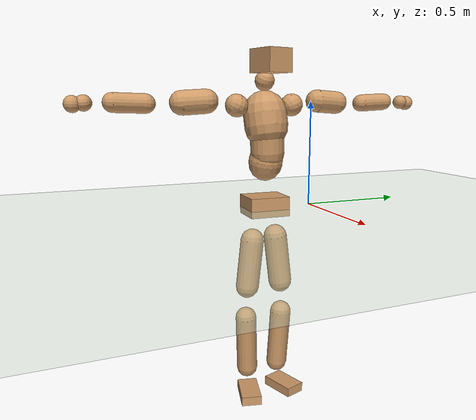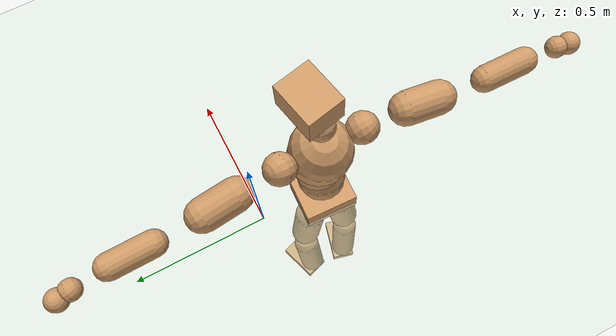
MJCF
<mujoco model="humanoid">
  <compiler coordinate="local" angle="radian"/>
  <default>
    <joint damping="0.0" armature="0.01" stiffness="0.0" limited="true"/>
    <geom conaffinity="1" condim="3" contype="7" margin="0.001" rgba="0.8 0.6 .4 1"/>
  </default>
  <asset>
    <texture type="skybox" builtin="gradient" rgb1=".4 .5 .6" rgb2="0 0 0" width="100" height="100"/>
    <texture builtin="flat" height="1278" mark="cross" markrgb="1 1 1" name="texgeom" random="0.01" rgb1="0.8 0.6 0.4" rgb2="0.8 0.6 0.4" type="cube" width="127"/>
    <texture builtin="checker" height="100" name="texplane" rgb1="0 0 0" rgb2="0.8 0.8 0.8" type="2d" width="100"/>
    <material name="MatPlane" reflectance="0.5" shininess="1" specular="1" texrepeat="60 60" texture="texplane"/>
    <material name="geom" texture="texgeom" texuniform="true"/>
  </asset>
  <worldbody>
    <light cutoff="100" diffuse="1 1 1" dir="-0 0 -1.3" directional="true" exponent="1" pos="0 0 1.3" specular=".1 .1 .1"/>
    <geom conaffinity="1" condim="3" name="floor" pos="0 0 0" rgba="0.8 0.9 0.8 1" size="100 100 .2" type="plane" material="MatPlane"/>
    <body name="Pelvis" pos="-0.0042 -0.2357 0.0204">
      <freejoint name="Pelvis"/>
      <geom type="box" contype="1" conaffinity="1" density="5359.374951" pos="-0.0105 0.0004 -0.0082" size="0.0826 0.0965 0.0466" quat="0.9998 0.0000 0.0000 -0.0207" name="Pelvis"/>
      <body name="L_Hip" pos="-0.0187 0.0516 -0.084">
        <joint name="L_Hip_x" type="hinge" pos="0 0 0" axis="1 0 0" stiffness="1600" damping="160" armature="0.02" range="-180.0000 180.0000"/>
        <joint name="L_Hip_y" type="hinge" pos="0 0 0" axis="0 1 0" stiffness="1600" damping="160" armature="0.02" range="-180.0000 180.0000"/>
        <joint name="L_Hip_z" type="hinge" pos="0 0 0" axis="0 0 1" stiffness="1600" damping="160" armature="0.02" range="-180.0000 180.0000"/>
        <geom type="capsule" contype="1" conaffinity="1" density="2040.816327" size="0.0571" fromto="0.0021 0.0094 -0.0866 0.0079 0.0352 -0.3239" name="L_Hip"/>
        <body name="L_Knee" pos="0.0101 0.0446 -0.4105">
          <joint name="L_Knee_x" type="hinge" pos="0 0 0" axis="1 0 0" stiffness="1600" damping="160" armature="0.02" range="-180.0000 180.0000"/>
          <joint name="L_Knee_y" type="hinge" pos="0 0 0" axis="0 1 0" stiffness="1600" damping="160" armature="0.02" range="-180.0000 180.0000"/>
          <joint name="L_Knee_z" type="hinge" pos="0 0 0" axis="0 0 1" stiffness="1600" damping="160" armature="0.02" range="-180.0000 180.0000"/>
          <geom type="capsule" contype="1" conaffinity="1" density="1234.567901" size="0.0521" fromto="-0.0067 -0.0027 -0.0818 -0.0307 -0.0125 -0.3751" name="L_Knee"/>
          <body name="L_Ankle" pos="-0.0374 -0.0152 -0.4569">
            <joint name="L_Ankle_x" type="hinge" pos="0 0 0" axis="1 0 0" stiffness="1600" damping="160" armature="0.02" range="-180.0000 180.0000"/>
            <joint name="L_Ankle_y" type="hinge" pos="0 0 0" axis="0 1 0" stiffness="1600" damping="160" armature="0.02" range="-180.0000 180.0000"/>
            <joint name="L_Ankle_z" type="hinge" pos="0 0 0" axis="0 0 1" stiffness="1600" damping="160" armature="0.02" range="-180.0000 180.0000"/>
            <geom type="box" contype="1" conaffinity="1" density="1000.000009" pos="0.0625 0.0200 -0.0312" size="0.0886 0.0506 0.0231" quat="0.9880 0.0000 0.0000 0.1546" name="L_Ankle"/>
            <body name="L_Toe" pos="0.1249 0.0401 -0.0625">
              <joint name="L_Toe_x" type="hinge" pos="0 0 0" axis="1 0 0" stiffness="1000" damping="100" armature="0.02" range="-180.0000 180.0000"/>
              <joint name="L_Toe_y" type="hinge" pos="0 0 0" axis="0 1 0" stiffness="1000" damping="100" armature="0.02" range="-180.0000 180.0000"/>
              <joint name="L_Toe_z" type="hinge" pos="0 0 0" axis="0 0 1" stiffness="1000" damping="100" armature="0.02" range="-180.0000 180.0000"/>
              <geom type="box" contype="1" conaffinity="1" density="8105315.616793" pos="0.0000 0.0000 0.0308" size="0.0011 0.0025 0.0011" quat="0.9872 0.0000 0.0000 0.1593" name="L_Toe"/>
            </body>
          </body>
        </body>
      </body>
      <body name="R_Hip" pos="-0.0136 -0.0541 -0.0943">
        <joint name="R_Hip_x" type="hinge" pos="0 0 0" axis="1 0 0" stiffness="1600" damping="160" armature="0.02" range="-180.0000 180.0000"/>
        <joint name="R_Hip_y" type="hinge" pos="0 0 0" axis="0 1 0" stiffness="1600" damping="160" armature="0.02" range="-180.0000 180.0000"/>
        <joint name="R_Hip_z" type="hinge" pos="0 0 0" axis="0 0 1" stiffness="1600" damping="160" armature="0.02" range="-180.0000 180.0000"/>
        <geom type="capsule" contype="1" conaffinity="1" density="2040.816327" size="0.0564" fromto="-0.0008 -0.0097 -0.0858 -0.0031 -0.0364 -0.3232" name="R_Hip"/>
        <body name="R_Knee" pos="-0.0039 -0.0461 -0.4091">
          <joint name="R_Knee_x" type="hinge" pos="0 0 0" axis="1 0 0" stiffness="1600" damping="160" armature="0.02" range="-180.0000 180.0000"/>
          <joint name="R_Knee_y" type="hinge" pos="0 0 0" axis="0 1 0" stiffness="1600" damping="160" armature="0.02" range="-180.0000 180.0000"/>
          <joint name="R_Knee_z" type="hinge" pos="0 0 0" axis="0 0 1" stiffness="1600" damping="160" armature="0.02" range="-180.0000 180.0000"/>
          <geom type="capsule" contype="1" conaffinity="1" density="1234.567901" size="0.0521" fromto="-0.0060 0.0038 -0.0818 -0.0272 0.0174 -0.3695" name="R_Knee"/>
          <body name="R_Ankle" pos="-0.0332 0.0212 -0.4513">
            <joint name="R_Ankle_x" type="hinge" pos="0 0 0" axis="1 0 0" stiffness="1600" damping="160" armature="0.02" range="-180.0000 180.0000"/>
            <joint name="R_Ankle_y" type="hinge" pos="0 0 0" axis="0 1 0" stiffness="1600" damping="160" armature="0.02" range="-180.0000 180.0000"/>
            <joint name="R_Ankle_z" type="hinge" pos="0 0 0" axis="0 0 1" stiffness="1600" damping="160" armature="0.02" range="-180.0000 180.0000"/>
            <geom type="box" contype="1" conaffinity="1" density="1000.00001" pos="0.0668 -0.0169 -0.0331" size="0.0926 0.0495 0.0229" quat="0.9924 0.0000 0.0000 -0.1234" name="R_Ankle"/>
            <body name="R_Toe" pos="0.1337 -0.0338 -0.0662">
              <joint name="R_Toe_x" type="hinge" pos="0 0 0" axis="1 0 0" stiffness="1000" damping="100" armature="0.02" range="-180.0000 180.0000"/>
              <joint name="R_Toe_y" type="hinge" pos="0 0 0" axis="0 1 0" stiffness="1000" damping="100" armature="0.02" range="-180.0000 180.0000"/>
              <joint name="R_Toe_z" type="hinge" pos="0 0 0" axis="0 0 1" stiffness="1000" damping="100" armature="0.02" range="-180.0000 180.0000"/>
              <geom type="box" contype="1" conaffinity="1" density="8415764.719971" pos="0.0000 0.0000 0.0332" size="0.0011 0.0024 0.0012" quat="0.9934 0.0000 0.0000 -0.1148" name="R_Toe"/>
            </body>
          </body>
        </body>
      </body>
      <body name="Torso" pos="-0.0305 0.005 0.1292">
        <joint name="Torso_x" type="hinge" pos="0 0 0" axis="1 0 0" stiffness="2000" damping="200" armature="0.02" range="-180.0000 180.0000"/>
        <joint name="Torso_y" type="hinge" pos="0 0 0" axis="0 1 0" stiffness="2000" damping="200" armature="0.02" range="-180.0000 180.0000"/>
        <joint name="Torso_z" type="hinge" pos="0 0 0" axis="0 0 1" stiffness="2000" damping="200" armature="0.02" range="-180.0000 180.0000"/>
        <geom type="capsule" contype="1" conaffinity="1" density="2040.816327" size="0.081" fromto="0.0167 0.0029 0.0792 0.0131 0.0023 0.0620" name="Torso"/>
        <body name="Spine" pos="0.0298 0.0052 0.1413">
          <joint name="Spine_x" type="hinge" pos="0 0 0" axis="1 0 0" stiffness="2000" damping="200" armature="0.02" range="-180.0000 180.0000"/>
          <joint name="Spine_y" type="hinge" pos="0 0 0" axis="0 1 0" stiffness="2000" damping="200" armature="0.02" range="-180.0000 180.0000"/>
          <joint name="Spine_z" type="hinge" pos="0 0 0" axis="0 0 1" stiffness="2000" damping="200" armature="0.02" range="-180.0000 180.0000"/>
          <geom type="capsule" contype="1" conaffinity="1" density="2040.816327" size="0.0805" fromto="0.0040 -0.0030 0.0803 -0.0012 0.0009 -0.0245" name="Spine"/>
          <body name="Chest" pos="0.0028 -0.0021 0.0559">
            <joint name="Chest_x" type="hinge" pos="0 0 0" axis="1 0 0" stiffness="2000" damping="200" armature="0.02" range="-180.0000 180.0000"/>
            <joint name="Chest_y" type="hinge" pos="0 0 0" axis="0 1 0" stiffness="2000" damping="200" armature="0.02" range="-180.0000 180.0000"/>
            <joint name="Chest_z" type="hinge" pos="0 0 0" axis="0 0 1" stiffness="2000" damping="200" armature="0.02" range="-180.0000 180.0000"/>
            <geom type="capsule" contype="1" conaffinity="1" density="2040.816327" size="0.1031" fromto="-0.0164 -0.0060 0.1016 -0.0067 -0.0024 0.0414" name="Chest"/>
            <body name="Neck" pos="-0.0299 -0.0152 0.2044">
              <joint name="Neck_x" type="hinge" pos="0 0 0" axis="1 0 0" stiffness="1000" damping="100" armature="0.02" range="-180.0000 180.0000"/>
              <joint name="Neck_y" type="hinge" pos="0 0 0" axis="0 1 0" stiffness="1000" damping="100" armature="0.02" range="-180.0000 180.0000"/>
              <joint name="Neck_z" type="hinge" pos="0 0 0" axis="0 0 1" stiffness="1000" damping="100" armature="0.02" range="-180.0000 180.0000"/>
              <geom type="capsule" contype="1" conaffinity="1" density="1000" size="0.0455" fromto="0.0229 0.0041 0.0410 0.0239 0.0043 0.0428" name="Neck"/>
              <body name="Head" pos="0.0468 0.0084 0.0838">
                <joint name="Head_x" type="hinge" pos="0 0 0" axis="1 0 0" stiffness="1000" damping="100" armature="0.02" range="-180.0000 180.0000"/>
                <joint name="Head_y" type="hinge" pos="0 0 0" axis="0 1 0" stiffness="1000" damping="100" armature="0.02" range="-180.0000 180.0000"/>
                <joint name="Head_z" type="hinge" pos="0 0 0" axis="0 0 1" stiffness="1000" damping="100" armature="0.02" range="-180.0000 180.0000"/>
                <geom type="box" contype="1" conaffinity="1" density="2250.000139" pos="0.0244 0.0052 0.0429" size="0.077 0.0626 0.0524" quat="0.9945 0.0000 0.0000 0.1051" name="Head"/>
              </body>
            </body>
            <body name="L_Thorax" pos="-0.0183 0.0758 0.1131">
              <joint name="L_Thorax_x" type="hinge" pos="0 0 0" axis="1 0 0" stiffness="1000" damping="100" armature="0.02" range="-180.0000 180.0000"/>
              <joint name="L_Thorax_y" type="hinge" pos="0 0 0" axis="0 1 0" stiffness="1000" damping="100" armature="0.02" range="-180.0000 180.0000"/>
              <joint name="L_Thorax_z" type="hinge" pos="0 0 0" axis="0 0 1" stiffness="1000" damping="100" armature="0.02" range="-180.0000 180.0000"/>
              <geom type="capsule" contype="1" conaffinity="1" density="1000" size="0.0532" fromto="-0.0096 0.0618 0.0236 -0.0099 0.0636 0.0243" name="L_Thorax"/>
              <body name="L_Shoulder" pos="-0.0196 0.1254 0.0479">
                <joint name="L_Shoulder_x" type="hinge" pos="0 0 0" axis="1 0 0" stiffness="1000" damping="100" armature="0.02" range="-720.0000 720.0000"/>
                <joint name="L_Shoulder_y" type="hinge" pos="0 0 0" axis="0 1 0" stiffness="1000" damping="100" armature="0.02" range="-720.0000 720.0000"/>
                <joint name="L_Shoulder_z" type="hinge" pos="0 0 0" axis="0 0 1" stiffness="1000" damping="100" armature="0.02" range="-720.0000 720.0000"/>
                <geom type="capsule" contype="1" conaffinity="1" density="1000" size="0.0544" fromto="-0.0071 0.0839 -0.0058 -0.0167 0.1970 -0.0136" name="L_Shoulder"/>
                <body name="L_Elbow" pos="-0.0238 0.2808 -0.0194">
                  <joint name="L_Elbow_x" type="hinge" pos="0 0 0" axis="1 0 0" stiffness="1000" damping="100" armature="0.02" range="-720.0000 720.0000"/>
                  <joint name="L_Elbow_y" type="hinge" pos="0 0 0" axis="0 1 0" stiffness="1000" damping="100" armature="0.02" range="-720.0000 720.0000"/>
                  <joint name="L_Elbow_z" type="hinge" pos="0 0 0" axis="0 0 1" stiffness="1000" damping="100" armature="0.02" range="-720.0000 720.0000"/>
                  <geom type="capsule" contype="1" conaffinity="1" density="1000" size="0.0419" fromto="-0.0025 0.0718 0.0032 -0.0074 0.2109 0.0093" name="L_Elbow"/>
                  <body name="L_Wrist" pos="-0.0099 0.2828 0.0125">
                    <joint name="L_Wrist_x" type="hinge" pos="0 0 0" axis="1 0 0" stiffness="600" damping="60" armature="0.02" range="-180.0000 180.0000"/>
                    <joint name="L_Wrist_y" type="hinge" pos="0 0 0" axis="0 1 0" stiffness="600" damping="60" armature="0.02" range="-180.0000 180.0000"/>
                    <joint name="L_Wrist_z" type="hinge" pos="0 0 0" axis="0 0 1" stiffness="600" damping="60" armature="0.02" range="-180.0000 180.0000"/>
                    <geom type="capsule" contype="1" conaffinity="1" density="1000" size="0.0344" fromto="-0.0079 0.0431 -0.0050 -0.0082 0.0450 -0.0053" name="L_Wrist"/>
                    <body name="L_Hand" pos="-0.0161 0.0881 -0.0103">
                      <joint name="L_Hand_x" type="hinge" pos="0 0 0" axis="1 0 0" stiffness="600" damping="60" armature="0.02" range="-180.0000 180.0000"/>
                      <joint name="L_Hand_y" type="hinge" pos="0 0 0" axis="0 1 0" stiffness="600" damping="60" armature="0.02" range="-180.0000 180.0000"/>
                      <joint name="L_Hand_z" type="hinge" pos="0 0 0" axis="0 0 1" stiffness="600" damping="60" armature="0.02" range="-180.0000 180.0000"/>
                      <geom type="sphere" contype="1" conaffinity="1" density="1000" size="0.0360" pos="0.0000 0.0000 0.0000" name="L_Hand"/>
                    </body>
                  </body>
                </body>
              </body>
            </body>
            <body name="R_Thorax" pos="-0.0211 -0.0859 0.1114">
              <joint name="R_Thorax_x" type="hinge" pos="0 0 0" axis="1 0 0" stiffness="1000" damping="100" armature="0.02" range="-180.0000 180.0000"/>
              <joint name="R_Thorax_y" type="hinge" pos="0 0 0" axis="0 1 0" stiffness="1000" damping="100" armature="0.02" range="-180.0000 180.0000"/>
              <joint name="R_Thorax_z" type="hinge" pos="0 0 0" axis="0 0 1" stiffness="1000" damping="100" armature="0.02" range="-180.0000 180.0000"/>
              <geom type="capsule" contype="1" conaffinity="1" density="1000" size="0.0527" fromto="-0.0038 -0.0557 0.0239 -0.0039 -0.0576 0.0247" name="R_Thorax"/>
              <body name="R_Shoulder" pos="-0.0077 -0.1133 0.0487">
                <joint name="R_Shoulder_x" type="hinge" pos="0 0 0" axis="1 0 0" stiffness="1000" damping="100" armature="0.02" range="-720.0000 720.0000"/>
                <joint name="R_Shoulder_y" type="hinge" pos="0 0 0" axis="0 1 0" stiffness="1000" damping="100" armature="0.02" range="-720.0000 720.0000"/>
                <joint name="R_Shoulder_z" type="hinge" pos="0 0 0" axis="0 0 1" stiffness="1000" damping="100" armature="0.02" range="-720.0000 720.0000"/>
                <geom type="capsule" contype="1" conaffinity="1" density="1000" size="0.0549" fromto="-0.0091 -0.0843 -0.0051 -0.0210 -0.1950 -0.0118" name="R_Shoulder"/>
                <body name="R_Elbow" pos="-0.0301 -0.2793 -0.0169">
                  <joint name="R_Elbow_x" type="hinge" pos="0 0 0" axis="1 0 0" stiffness="1000" damping="100" armature="0.02" range="-720.0000 720.0000"/>
                  <joint name="R_Elbow_y" type="hinge" pos="0 0 0" axis="0 1 0" stiffness="1000" damping="100" armature="0.02" range="-720.0000 720.0000"/>
                  <joint name="R_Elbow_z" type="hinge" pos="0 0 0" axis="0 0 1" stiffness="1000" damping="100" armature="0.02" range="-720.0000 720.0000"/>
                  <geom type="capsule" contype="1" conaffinity="1" density="1000" size="0.0426" fromto="-0.0021 -0.0725 0.0024 -0.0061 -0.2136 0.0071" name="R_Elbow"/>
                  <body name="R_Wrist" pos="-0.0081 -0.2861 0.0095">
                    <joint name="R_Wrist_x" type="hinge" pos="0 0 0" axis="1 0 0" stiffness="600" damping="60" armature="0.02" range="-180.0000 180.0000"/>
                    <joint name="R_Wrist_y" type="hinge" pos="0 0 0" axis="0 1 0" stiffness="600" damping="60" armature="0.02" range="-180.0000 180.0000"/>
                    <joint name="R_Wrist_z" type="hinge" pos="0 0 0" axis="0 0 1" stiffness="600" damping="60" armature="0.02" range="-180.0000 180.0000"/>
                    <geom type="capsule" contype="1" conaffinity="1" density="1000" size="0.0346" fromto="-0.0051 -0.0434 -0.0041 -0.0053 -0.0454 -0.0043" name="R_Wrist"/>
                    <body name="R_Hand" pos="-0.0103 -0.0888 -0.0084">
                      <joint name="R_Hand_x" type="hinge" pos="0 0 0" axis="1 0 0" stiffness="600" damping="60" armature="0.02" range="-180.0000 180.0000"/>
                      <joint name="R_Hand_y" type="hinge" pos="0 0 0" axis="0 1 0" stiffness="600" damping="60" armature="0.02" range="-180.0000 180.0000"/>
                      <joint name="R_Hand_z" type="hinge" pos="0 0 0" axis="0 0 1" stiffness="600" damping="60" armature="0.02" range="-180.0000 180.0000"/>
                      <geom type="sphere" contype="1" conaffinity="1" density="1000" size="0.0360" pos="0.0000 0.0000 0.0000" name="R_Hand"/>
                    </body>
                  </body>
                </body>
              </body>
            </body>
          </body>
        </body>
      </body>
    </body>
  </worldbody>
  <actuator>
    <motor name="L_Hip_x" joint="L_Hip_x" gear="500"/>
    <motor name="L_Hip_y" joint="L_Hip_y" gear="500"/>
    <motor name="L_Hip_z" joint="L_Hip_z" gear="500"/>
    <motor name="L_Knee_x" joint="L_Knee_x" gear="500"/>
    <motor name="L_Knee_y" joint="L_Knee_y" gear="500"/>
    <motor name="L_Knee_z" joint="L_Knee_z" gear="500"/>
    <motor name="L_Ankle_x" joint="L_Ankle_x" gear="500"/>
    <motor name="L_Ankle_y" joint="L_Ankle_y" gear="500"/>
    <motor name="L_Ankle_z" joint="L_Ankle_z" gear="500"/>
    <motor name="L_Toe_x" joint="L_Toe_x" gear="500"/>
    <motor name="L_Toe_y" joint="L_Toe_y" gear="500"/>
    <motor name="L_Toe_z" joint="L_Toe_z" gear="500"/>
    <motor name="R_Hip_x" joint="R_Hip_x" gear="500"/>
    <motor name="R_Hip_y" joint="R_Hip_y" gear="500"/>
    <motor name="R_Hip_z" joint="R_Hip_z" gear="500"/>
    <motor name="R_Knee_x" joint="R_Knee_x" gear="500"/>
    <motor name="R_Knee_y" joint="R_Knee_y" gear="500"/>
    <motor name="R_Knee_z" joint="R_Knee_z" gear="500"/>
    <motor name="R_Ankle_x" joint="R_Ankle_x" gear="500"/>
    <motor name="R_Ankle_y" joint="R_Ankle_y" gear="500"/>
    <motor name="R_Ankle_z" joint="R_Ankle_z" gear="500"/>
    <motor name="R_Toe_x" joint="R_Toe_x" gear="500"/>
    <motor name="R_Toe_y" joint="R_Toe_y" gear="500"/>
    <motor name="R_Toe_z" joint="R_Toe_z" gear="500"/>
    <motor name="Torso_x" joint="Torso_x" gear="500"/>
    <motor name="Torso_y" joint="Torso_y" gear="500"/>
    <motor name="Torso_z" joint="Torso_z" gear="500"/>
    <motor name="Spine_x" joint="Spine_x" gear="500"/>
    <motor name="Spine_y" joint="Spine_y" gear="500"/>
    <motor name="Spine_z" joint="Spine_z" gear="500"/>
    <motor name="Chest_x" joint="Chest_x" gear="500"/>
    <motor name="Chest_y" joint="Chest_y" gear="500"/>
    <motor name="Chest_z" joint="Chest_z" gear="500"/>
    <motor name="Neck_x" joint="Neck_x" gear="500"/>
    <motor name="Neck_y" joint="Neck_y" gear="500"/>
    <motor name="Neck_z" joint="Neck_z" gear="500"/>
    <motor name="Head_x" joint="Head_x" gear="500"/>
    <motor name="Head_y" joint="Head_y" gear="500"/>
    <motor name="Head_z" joint="Head_z" gear="500"/>
    <motor name="L_Thorax_x" joint="L_Thorax_x" gear="500"/>
    <motor name="L_Thorax_y" joint="L_Thorax_y" gear="500"/>
    <motor name="L_Thorax_z" joint="L_Thorax_z" gear="500"/>
    <motor name="L_Shoulder_x" joint="L_Shoulder_x" gear="500"/>
    <motor name="L_Shoulder_y" joint="L_Shoulder_y" gear="500"/>
    <motor name="L_Shoulder_z" joint="L_Shoulder_z" gear="500"/>
    <motor name="L_Elbow_x" joint="L_Elbow_x" gear="500"/>
    <motor name="L_Elbow_y" joint="L_Elbow_y" gear="500"/>
    <motor name="L_Elbow_z" joint="L_Elbow_z" gear="500"/>
    <motor name="L_Wrist_x" joint="L_Wrist_x" gear="500"/>
    <motor name="L_Wrist_y" joint="L_Wrist_y" gear="500"/>
    <motor name="L_Wrist_z" joint="L_Wrist_z" gear="500"/>
    <motor name="L_Hand_x" joint="L_Hand_x" gear="500"/>
    <motor name="L_Hand_y" joint="L_Hand_y" gear="500"/>
    <motor name="L_Hand_z" joint="L_Hand_z" gear="500"/>
    <motor name="R_Thorax_x" joint="R_Thorax_x" gear="500"/>
    <motor name="R_Thorax_y" joint="R_Thorax_y" gear="500"/>
    <motor name="R_Thorax_z" joint="R_Thorax_z" gear="500"/>
    <motor name="R_Shoulder_x" joint="R_Shoulder_x" gear="500"/>
    <motor name="R_Shoulder_y" joint="R_Shoulder_y" gear="500"/>
    <motor name="R_Shoulder_z" joint="R_Shoulder_z" gear="500"/>
    <motor name="R_Elbow_x" joint="R_Elbow_x" gear="500"/>
    <motor name="R_Elbow_y" joint="R_Elbow_y" gear="500"/>
    <motor name="R_Elbow_z" joint="R_Elbow_z" gear="500"/>
    <motor name="R_Wrist_x" joint="R_Wrist_x" gear="500"/>
    <motor name="R_Wrist_y" joint="R_Wrist_y" gear="500"/>
    <motor name="R_Wrist_z" joint="R_Wrist_z" gear="500"/>
    <motor name="R_Hand_x" joint="R_Hand_x" gear="500"/>
    <motor name="R_Hand_y" joint="R_Hand_y" gear="500"/>
    <motor name="R_Hand_z" joint="R_Hand_z" gear="500"/>
  </actuator>
  <contact>
    <exclude body1="Torso" body2="Chest"/>
    <exclude body1="Head" body2="Chest"/>
    <exclude body1="R_Knee" body2="R_Toe"/>
    <exclude body1="R_Knee" body2="L_Ankle"/>
    <exclude body1="R_Knee" body2="L_Toe"/>
    <exclude body1="L_Knee" body2="L_Toe"/>
    <exclude body1="L_Knee" body2="R_Ankle"/>
    <exclude body1="L_Knee" body2="R_Toe"/>
    <exclude body1="L_Shoulder" body2="Chest"/>
    <exclude body1="R_Shoulder" body2="Chest"/>
  </contact>
  <sensor/>
  <size njmax="700" nconmax="700"/>
</mujoco>
